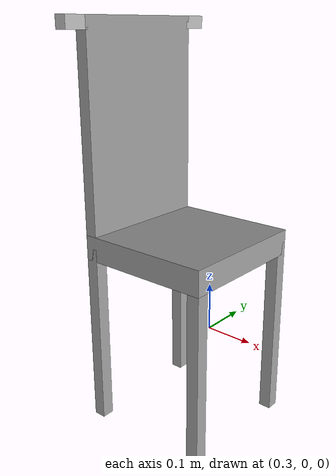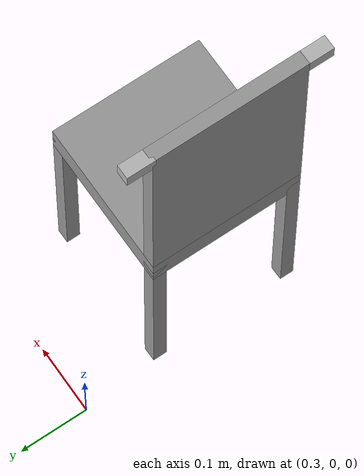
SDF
<?xml version='1.0'?>
<sdf version='1.7'>
  <model name='chair'>
    <link name='link_0'>
      <inertial>
        <mass>0.00163851</mass>
        <inertia>
          <ixx>4.77e-06</ixx>
          <ixy>0</ixy>
          <ixz>0</ixz>
          <iyy>7.3e-06</iyy>
          <iyz>0</iyz>
          <izz>1.163e-05</izz>
        </inertia>
        <pose>0 0 0 0 -0 0</pose>
      </inertial>
      <pose>0.423364 -0.223839 -0.02 0 -0 0</pose>
      <kinematic>1</kinematic>
      <visual name='ModelPreview_1::link_0::visual_5'>
        <pose>-0.1 0 0.48 0 -0 0</pose>
        <geometry>
          <box>
            <size>0.02 0.22 0.32</size>
          </box>
        </geometry>
        <material>
          <lighting>1</lighting>
          <script>
            <uri>file://media/materials/scripts/gazebo.material</uri>
            <name>Gazebo/Grey</name>
          </script>
          <shader type='pixel'>
            <normal_map>__default__</normal_map>
          </shader>
          <ambient>0.3 0.3 0.3 1</ambient>
          <diffuse>0.7 0.7 0.7 1</diffuse>
          <specular>0.01 0.01 0.01 1</specular>
          <emissive>0 0 0 1</emissive>
        </material>
        <transparency>0</transparency>
        <cast_shadows>1</cast_shadows>
      </visual>
      <visual name='visual'>
        <pose>0 0 0.3 0 -0 0</pose>
        <geometry>
          <box>
            <size>0.22 0.22 0.04</size>
          </box>
        </geometry>
        <material>
          <lighting>1</lighting>
          <script>
            <uri>file://media/materials/scripts/gazebo.material</uri>
            <name>Gazebo/Grey</name>
          </script>
          <shader type='pixel'>
            <normal_map>__default__</normal_map>
          </shader>
          <ambient>0.3 0.3 0.3 1</ambient>
          <diffuse>0.7 0.7 0.7 1</diffuse>
          <specular>0.01 0.01 0.01 1</specular>
          <emissive>0 0 0 1</emissive>
        </material>
        <transparency>0</transparency>
        <cast_shadows>1</cast_shadows>
      </visual>
      <visual name='ModelPreview_1::link_0::visual_1'>
        <pose>-0.1 -0.1 0.15 0 -0 0</pose>
        <geometry>
          <box>
            <size>0.02 0.02 0.3</size>
          </box>
        </geometry>
        <material>
          <lighting>1</lighting>
          <script>
            <uri>file://media/materials/scripts/gazebo.material</uri>
            <name>Gazebo/Grey</name>
          </script>
          <shader type='pixel'>
            <normal_map>__default__</normal_map>
          </shader>
          <ambient>0.3 0.3 0.3 1</ambient>
          <diffuse>0.7 0.7 0.7 1</diffuse>
          <specular>0.01 0.01 0.01 1</specular>
          <emissive>0 0 0 1</emissive>
        </material>
        <transparency>0</transparency>
        <cast_shadows>1</cast_shadows>
      </visual>
      <visual name='ModelPreview_1::link_0::visual_2'>
        <pose>0.1 -0.1 0.15 0 -0 0</pose>
        <geometry>
          <box>
            <size>0.02 0.02 0.3</size>
          </box>
        </geometry>
        <material>
          <lighting>1</lighting>
          <script>
            <uri>file://media/materials/scripts/gazebo.material</uri>
            <name>Gazebo/Grey</name>
          </script>
          <shader type='pixel'>
            <normal_map>__default__</normal_map>
          </shader>
          <ambient>0.3 0.3 0.3 1</ambient>
          <diffuse>0.7 0.7 0.7 1</diffuse>
          <specular>0.01 0.01 0.01 1</specular>
          <emissive>0 0 0 1</emissive>
        </material>
        <transparency>0</transparency>
        <cast_shadows>1</cast_shadows>
      </visual>
      <visual name='ModelPreview_1::link_0::visual_3'>
        <pose>-0.1 0.1 0.15 0 -0 0</pose>
        <geometry>
          <box>
            <size>0.02 0.02 0.3</size>
          </box>
        </geometry>
        <material>
          <lighting>1</lighting>
          <script>
            <uri>file://media/materials/scripts/gazebo.material</uri>
            <name>Gazebo/Grey</name>
          </script>
          <shader type='pixel'>
            <normal_map>__default__</normal_map>
          </shader>
          <ambient>0.3 0.3 0.3 1</ambient>
          <diffuse>0.7 0.7 0.7 1</diffuse>
          <specular>0.01 0.01 0.01 1</specular>
          <emissive>0 0 0 1</emissive>
        </material>
        <transparency>0</transparency>
        <cast_shadows>1</cast_shadows>
      </visual>
      <visual name='ModelPreview_1::link_0::visual_4'>
        <pose>0.1 0.1 0.15 0 -0 0</pose>
        <geometry>
          <box>
            <size>0.02 0.02 0.3</size>
          </box>
        </geometry>
        <material>
          <lighting>1</lighting>
          <script>
            <uri>file://media/materials/scripts/gazebo.material</uri>
            <name>Gazebo/Grey</name>
          </script>
          <shader type='pixel'>
            <normal_map>__default__</normal_map>
          </shader>
          <ambient>0.3 0.3 0.3 1</ambient>
          <diffuse>0.7 0.7 0.7 1</diffuse>
          <specular>0.01 0.01 0.01 1</specular>
          <emissive>0 0 0 1</emissive>
        </material>
        <transparency>0</transparency>
        <cast_shadows>1</cast_shadows>
      </visual>
      <visual name='visual_6'>
        <pose>-0.1 0.125 0.63 0 -0 0</pose>
        <geometry>
          <box>
            <size>0.02 0.04 0.02</size>
          </box>
        </geometry>
      </visual>
      <visual name='visual_7'>
        <pose>-0.1 -0.125 0.63 0 -0 0</pose>
        <geometry>
          <box>
            <size>0.02 0.04 0.02</size>
          </box>
        </geometry>
      </visual>
      <collision name='collision_1'>
        <laser_retro>0</laser_retro>
        <max_contacts>10</max_contacts>
        <pose>-0.1 -0.1 0.15 0 -0 0</pose>
        <geometry>
          <box>
            <size>0.02 0.02 0.3</size>
          </box>
        </geometry>
        <surface>
          <friction>
            <ode>
              <mu>1</mu>
              <mu2>1</mu2>
              <fdir1>0 0 0</fdir1>
              <slip1>0</slip1>
              <slip2>0</slip2>
            </ode>
            <torsional>
              <coefficient>1</coefficient>
              <patch_radius>0</patch_radius>
              <surface_radius>0</surface_radius>
              <use_patch_radius>1</use_patch_radius>
              <ode>
                <slip>0</slip>
              </ode>
            </torsional>
          </friction>
          <bounce>
            <restitution_coefficient>0</restitution_coefficient>
            <threshold>1e+06</threshold>
          </bounce>
          <contact>
            <collide_without_contact>0</collide_without_contact>
            <collide_without_contact_bitmask>1</collide_without_contact_bitmask>
            <collide_bitmask>1</collide_bitmask>
            <ode>
              <soft_cfm>0</soft_cfm>
              <soft_erp>0.2</soft_erp>
              <kp>1e+13</kp>
              <kd>1</kd>
              <max_vel>0.01</max_vel>
              <min_depth>0</min_depth>
            </ode>
            <bullet>
              <split_impulse>1</split_impulse>
              <split_impulse_penetration_threshold>-0.01</split_impulse_penetration_threshold>
              <soft_cfm>0</soft_cfm>
              <soft_erp>0.2</soft_erp>
              <kp>1e+13</kp>
              <kd>1</kd>
            </bullet>
          </contact>
        </surface>
      </collision>
      <collision name='collision_2'>
        <laser_retro>0</laser_retro>
        <max_contacts>10</max_contacts>
        <pose>-0.1 0.1 0.15 0 -0 0</pose>
        <geometry>
          <box>
            <size>0.02 0.02 0.3</size>
          </box>
        </geometry>
        <surface>
          <friction>
            <ode>
              <mu>1</mu>
              <mu2>1</mu2>
              <fdir1>0 0 0</fdir1>
              <slip1>0</slip1>
              <slip2>0</slip2>
            </ode>
            <torsional>
              <coefficient>1</coefficient>
              <patch_radius>0</patch_radius>
              <surface_radius>0</surface_radius>
              <use_patch_radius>1</use_patch_radius>
              <ode>
                <slip>0</slip>
              </ode>
            </torsional>
          </friction>
          <bounce>
            <restitution_coefficient>0</restitution_coefficient>
            <threshold>1e+06</threshold>
          </bounce>
          <contact>
            <collide_without_contact>0</collide_without_contact>
            <collide_without_contact_bitmask>1</collide_without_contact_bitmask>
            <collide_bitmask>1</collide_bitmask>
            <ode>
              <soft_cfm>0</soft_cfm>
              <soft_erp>0.2</soft_erp>
              <kp>1e+13</kp>
              <kd>1</kd>
              <max_vel>0.01</max_vel>
              <min_depth>0</min_depth>
            </ode>
            <bullet>
              <split_impulse>1</split_impulse>
              <split_impulse_penetration_threshold>-0.01</split_impulse_penetration_threshold>
              <soft_cfm>0</soft_cfm>
              <soft_erp>0.2</soft_erp>
              <kp>1e+13</kp>
              <kd>1</kd>
            </bullet>
          </contact>
        </surface>
      </collision>
      <collision name='collision_3'>
        <laser_retro>0</laser_retro>
        <max_contacts>10</max_contacts>
        <pose>0.1 -0.1 0.15 0 -0 0</pose>
        <geometry>
          <box>
            <size>0.02 0.02 0.3</size>
          </box>
        </geometry>
        <surface>
          <friction>
            <ode>
              <mu>1</mu>
              <mu2>1</mu2>
              <fdir1>0 0 0</fdir1>
              <slip1>0</slip1>
              <slip2>0</slip2>
            </ode>
            <torsional>
              <coefficient>1</coefficient>
              <patch_radius>0</patch_radius>
              <surface_radius>0</surface_radius>
              <use_patch_radius>1</use_patch_radius>
              <ode>
                <slip>0</slip>
              </ode>
            </torsional>
          </friction>
          <bounce>
            <restitution_coefficient>0</restitution_coefficient>
            <threshold>1e+06</threshold>
          </bounce>
          <contact>
            <collide_without_contact>0</collide_without_contact>
            <collide_without_contact_bitmask>1</collide_without_contact_bitmask>
            <collide_bitmask>1</collide_bitmask>
            <ode>
              <soft_cfm>0</soft_cfm>
              <soft_erp>0.2</soft_erp>
              <kp>1e+13</kp>
              <kd>1</kd>
              <max_vel>0.01</max_vel>
              <min_depth>0</min_depth>
            </ode>
            <bullet>
              <split_impulse>1</split_impulse>
              <split_impulse_penetration_threshold>-0.01</split_impulse_penetration_threshold>
              <soft_cfm>0</soft_cfm>
              <soft_erp>0.2</soft_erp>
              <kp>1e+13</kp>
              <kd>1</kd>
            </bullet>
          </contact>
        </surface>
      </collision>
      <collision name='collision'>
        <laser_retro>0</laser_retro>
        <max_contacts>10</max_contacts>
        <pose>0 0 0.3 0 -0 0</pose>
        <geometry>
          <box>
            <size>0.22 0.22 0.04</size>
          </box>
        </geometry>
        <surface>
          <friction>
            <ode>
              <mu>1</mu>
              <mu2>1</mu2>
              <fdir1>0 0 0</fdir1>
              <slip1>0</slip1>
              <slip2>0</slip2>
            </ode>
            <torsional>
              <coefficient>1</coefficient>
              <patch_radius>0</patch_radius>
              <surface_radius>0</surface_radius>
              <use_patch_radius>1</use_patch_radius>
              <ode>
                <slip>0</slip>
              </ode>
            </torsional>
          </friction>
          <bounce>
            <restitution_coefficient>0</restitution_coefficient>
            <threshold>1e+06</threshold>
          </bounce>
          <contact>
            <collide_without_contact>0</collide_without_contact>
            <collide_without_contact_bitmask>1</collide_without_contact_bitmask>
            <collide_bitmask>1</collide_bitmask>
            <ode>
              <soft_cfm>0</soft_cfm>
              <soft_erp>0.2</soft_erp>
              <kp>1e+13</kp>
              <kd>1</kd>
              <max_vel>0.01</max_vel>
              <min_depth>0</min_depth>
            </ode>
            <bullet>
              <split_impulse>1</split_impulse>
              <split_impulse_penetration_threshold>-0.01</split_impulse_penetration_threshold>
              <soft_cfm>0</soft_cfm>
              <soft_erp>0.2</soft_erp>
              <kp>1e+13</kp>
              <kd>1</kd>
            </bullet>
          </contact>
        </surface>
      </collision>
      <collision name='collision_5'>
        <laser_retro>0</laser_retro>
        <max_contacts>10</max_contacts>
        <pose>-0.1 0 0.48 0 -0 0</pose>
        <geometry>
          <box>
            <size>0.02 0.22 0.32</size>
          </box>
        </geometry>
        <surface>
          <friction>
            <ode>
              <mu>1</mu>
              <mu2>1</mu2>
              <fdir1>0 0 0</fdir1>
              <slip1>0</slip1>
              <slip2>0</slip2>
            </ode>
            <torsional>
              <coefficient>1</coefficient>
              <patch_radius>0</patch_radius>
              <surface_radius>0</surface_radius>
              <use_patch_radius>1</use_patch_radius>
              <ode>
                <slip>0</slip>
              </ode>
            </torsional>
          </friction>
          <bounce>
            <restitution_coefficient>0</restitution_coefficient>
            <threshold>1e+06</threshold>
          </bounce>
          <contact>
            <collide_without_contact>0</collide_without_contact>
            <collide_without_contact_bitmask>1</collide_without_contact_bitmask>
            <collide_bitmask>1</collide_bitmask>
            <ode>
              <soft_cfm>0</soft_cfm>
              <soft_erp>0.2</soft_erp>
              <kp>1e+13</kp>
              <kd>1</kd>
              <max_vel>0.01</max_vel>
              <min_depth>0</min_depth>
            </ode>
            <bullet>
              <split_impulse>1</split_impulse>
              <split_impulse_penetration_threshold>-0.01</split_impulse_penetration_threshold>
              <soft_cfm>0</soft_cfm>
              <soft_erp>0.2</soft_erp>
              <kp>1e+13</kp>
              <kd>1</kd>
            </bullet>
          </contact>
        </surface>
      </collision>
      <collision name='collision_4'>
        <laser_retro>0</laser_retro>
        <max_contacts>10</max_contacts>
        <pose>0.1 0.1 0.15 0 -0 0</pose>
        <geometry>
          <box>
            <size>0.02 0.02 0.3</size>
          </box>
        </geometry>
        <surface>
          <friction>
            <ode>
              <mu>1</mu>
              <mu2>1</mu2>
              <fdir1>0 0 0</fdir1>
              <slip1>0</slip1>
              <slip2>0</slip2>
            </ode>
            <torsional>
              <coefficient>1</coefficient>
              <patch_radius>0</patch_radius>
              <surface_radius>0</surface_radius>
              <use_patch_radius>1</use_patch_radius>
              <ode>
                <slip>0</slip>
              </ode>
            </torsional>
          </friction>
          <bounce>
            <restitution_coefficient>0</restitution_coefficient>
            <threshold>1e+06</threshold>
          </bounce>
          <contact>
            <collide_without_contact>0</collide_without_contact>
            <collide_without_contact_bitmask>1</collide_without_contact_bitmask>
            <collide_bitmask>1</collide_bitmask>
            <ode>
              <soft_cfm>0</soft_cfm>
              <soft_erp>0.2</soft_erp>
              <kp>1e+13</kp>
              <kd>1</kd>
              <max_vel>0.01</max_vel>
              <min_depth>0</min_depth>
            </ode>
            <bullet>
              <split_impulse>1</split_impulse>
              <split_impulse_penetration_threshold>-0.01</split_impulse_penetration_threshold>
              <soft_cfm>0</soft_cfm>
              <soft_erp>0.2</soft_erp>
              <kp>1e+13</kp>
              <kd>1</kd>
            </bullet>
          </contact>
        </surface>
      </collision>
      <collision name='collision_6'>
        <pose>-0.1 0.125 0.63 0 -0 0</pose>
        <geometry>
          <box>
            <size>0.02 0.04 0.02</size>
          </box>
        </geometry>
      </collision>
      <collision name='collision_7'>
        <pose>-0.1 -0.125 0.63 0 -0 0</pose>
        <geometry>
          <box>
            <size>0.02 0.04 0.02</size>
          </box>
        </geometry>
      </collision>
    </link>
    <static>0</static>
    <allow_auto_disable>1</allow_auto_disable>
  </model>
</sdf>
